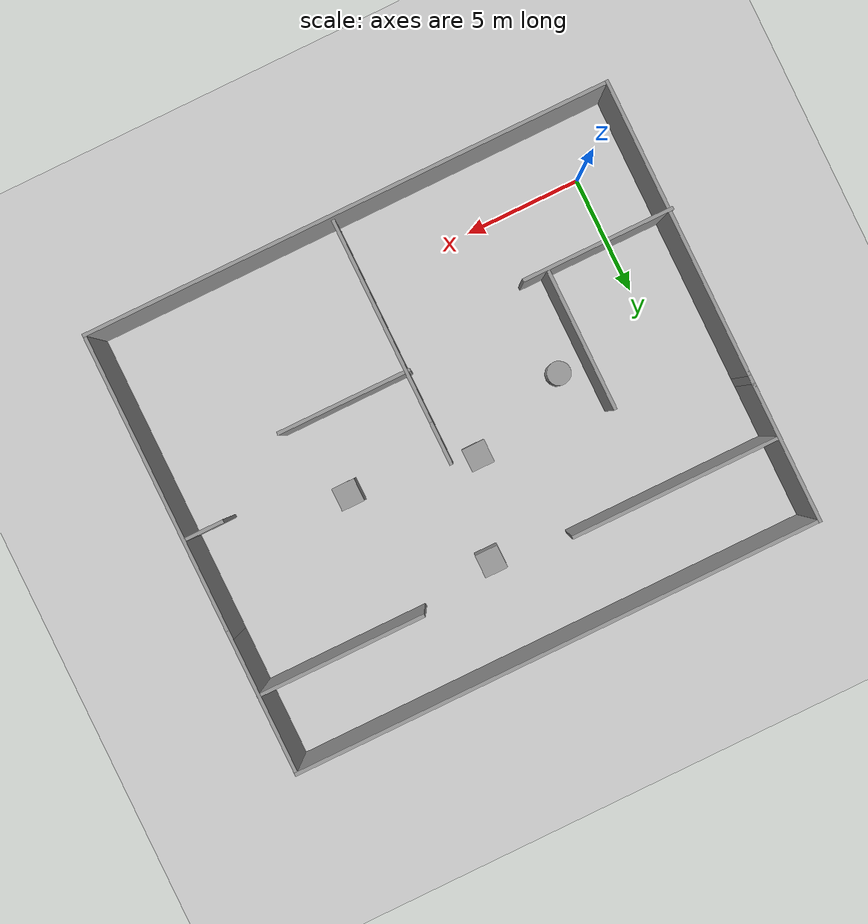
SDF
<sdf version="1.7">
 <world name="default">
  <light name="sun" type="directional">
   <pose>0 0 10 0 -0 0</pose>
   <diffuse>0.8 0.8 0.8 1</diffuse>
   <specular>0.2 0.2 0.2 1</specular>
   <attenuation>
    <range>1000</range>
    <constant>0.9</constant>
    <linear>0.01</linear>
    <quadratic>0.001</quadratic>
   </attenuation>
   <direction>-0.5 0.1 -0.9</direction>
   <spot><inner_angle>0</inner_angle><outer_angle>0</outer_angle><falloff>0</falloff></spot>
  </light>
  <model name="ground_plane">
   <static>1</static>
   <link name="link">
    <collision name="collision">
     <geometry><plane><normal>0 0 1</normal><size>100 100</size></plane></geometry>
     <surface><friction><ode><mu>100</mu><mu2>50</mu2></ode></friction></surface>
    </collision>
    <visual name="visual">
     <cast_shadows>0</cast_shadows>
     <geometry><plane><normal>0 0 1</normal><size>100 100</size></plane></geometry>
     <material>
      <script><uri>file://media/materials/scripts/gazebo.material</uri><name>Gazebo/Grey</name></script>
     </material>
    </visual>
   </link>
  </model>
  <gravity>0 0 -9.8</gravity>
  <magnetic_field>6e-06 2.3e-05 -4.2e-05</magnetic_field>
  <atmosphere type="adiabatic"/>
  <physics type="ode">
   <max_step_size>0.001</max_step_size>
   <real_time_factor>1</real_time_factor>
   <real_time_update_rate>1000</real_time_update_rate>
  </physics>
  <scene><ambient>0.4 0.4 0.4 1</ambient><background>0.7 0.7 0.7 1</background><shadows>1</shadows></scene>
  <spherical_coordinates>
   <surface_model>EARTH_WGS84</surface_model>
   <latitude_deg>0</latitude_deg>
   <longitude_deg>0</longitude_deg>
   <elevation>0</elevation>
   <heading_deg>0</heading_deg>
  </spherical_coordinates>
  <model name="building_room">
   <pose>9.02561 6.91001 0 0 -0 0</pose>
   <link name="Wall_11">
    <collision name="Wall_11_Collision">
     <geometry><box><size>6.5 0.15 2.5</size></box></geometry>
     <pose>0 0 1.25 0 -0 0</pose>
    </collision>
    <visual name="Wall_11_Visual">
     <pose>0 0 1.25 0 -0 0</pose>
     <geometry><box><size>6.5 0.15 2.5</size></box></geometry>
     <material>
      <script><uri>file://media/materials/scripts/gazebo.material</uri><name>Gazebo/Grey</name></script>
      <ambient>1 1 1 1</ambient>
     </material>
     <meta><layer>0</layer></meta>
    </visual>
    <pose>-8.18188 -3.95065 0 0 -0 0</pose>
   </link>
   <link name="Wall_13">
    <collision name="Wall_13_Collision">
     <geometry><box><size>8.75 0.15 2.5</size></box></geometry>
     <pose>0 0 1.25 0 -0 0</pose>
    </collision>
    <visual name="Wall_13_Visual">
     <pose>0 0 1.25 0 -0 0</pose>
     <geometry><box><size>8.75 0.15 2.5</size></box></geometry>
     <material>
      <script><uri>file://media/materials/scripts/gazebo.material</uri><name>Gazebo/Grey</name></script>
      <ambient>1 1 1 1</ambient>
     </material>
     <meta><layer>0</layer></meta>
    </visual>
    <pose>0.693008 -4.92563 0 0 -0 -1.5708</pose>
   </link>
   <link name="Wall_19">
    <collision name="Wall_19_Collision">
     <geometry><box><size>6 0.15 2.5</size></box></geometry>
     <pose>0 0 1.25 0 -0 0</pose>
    </collision>
    <visual name="Wall_19_Visual">
     <pose>0 0 1.25 0 -0 0</pose>
     <geometry><box><size>6 0.15 2.5</size></box></geometry>
     <material>
      <script><uri>file://media/materials/scripts/gazebo.material</uri><name>Gazebo/Grey</name></script>
      <ambient>1 1 1 1</ambient>
     </material>
     <meta><layer>0</layer></meta>
    </visual>
    <pose>-11.2505 6.55 0 0 -0 1.5708</pose>
   </link>
   <link name="Wall_23">
    <collision name="Wall_23_Collision">
     <geometry><box><size>22.75 0.15 2.5</size></box></geometry>
     <pose>0 0 1.25 0 -0 0</pose>
    </collision>
    <visual name="Wall_23_Visual">
     <pose>0 0 1.25 0 -0 0</pose>
     <geometry><box><size>22.75 0.15 2.5</size></box></geometry>
     <material>
      <script><uri>file://media/materials/scripts/gazebo.material</uri><name>Gazebo/Grey</name></script>
      <ambient>1 1 1 1</ambient>
     </material>
     <meta><layer>0</layer></meta>
    </visual>
    <pose>0.049519 9.475 0 0 -0 0</pose>
   </link>
   <link name="Wall_24">
    <collision name="Wall_24_Collision">
     <geometry><box><size>6.25 0.15 2.5</size></box></geometry>
     <pose>0 0 1.25 0 -0 0</pose>
    </collision>
    <visual name="Wall_24_Visual">
     <pose>0 0 1.25 0 -0 0</pose>
     <geometry><box><size>6.25 0.15 2.5</size></box></geometry>
     <material>
      <script><uri>file://media/materials/scripts/gazebo.material</uri><name>Gazebo/Grey</name></script>
      <ambient>1 1 1 1</ambient>
     </material>
     <meta><layer>0</layer></meta>
    </visual>
    <pose>11.3495 6.425 0 0 -0 -1.5708</pose>
   </link>
   <link name="Wall_28">
    <collision name="Wall_28_Collision">
     <geometry><box><size>6 0.15 2.5</size></box></geometry>
     <pose>0 0 1.25 0 -0 0</pose>
    </collision>
    <visual name="Wall_28_Visual">
     <pose>0 0 1.25 0 -0 0</pose>
     <geometry><box><size>6 0.15 2.5</size></box></geometry>
     <material>
      <script><uri>file://media/materials/scripts/gazebo.material</uri><name>Gazebo/Grey</name></script>
      <ambient>1 1 1 1</ambient>
     </material>
     <meta><layer>0</layer></meta>
    </visual>
    <pose>-5.98554 -0.864549 0 0 -0 -1.5708</pose>
   </link>
   <link name="Wall_34">
    <collision name="Wall_34_Collision">
     <geometry><box><size>1.75 0.15 2.5</size></box></geometry>
     <pose>0 0 1.25 0 -0 0</pose>
    </collision>
    <visual name="Wall_34_Visual">
     <pose>0 0 1.25 0 -0 0</pose>
     <geometry><box><size>1.75 0.15 2.5</size></box></geometry>
     <material>
      <script><uri>file://media/materials/scripts/gazebo.material</uri><name>Gazebo/Grey</name></script>
      <ambient>1 1 1 1</ambient>
     </material>
     <meta><layer>0</layer></meta>
    </visual>
    <pose>10.4958 -0.614674 0 0 -0 3.14159</pose>
   </link>
   <link name="Wall_36">
    <collision name="Wall_36_Collision">
     <geometry><box><size>5.75 0.15 2.5</size></box></geometry>
     <pose>0 0 1.25 0 -0 0</pose>
    </collision>
    <visual name="Wall_36_Visual">
     <pose>0 0 1.25 0 -0 0</pose>
     <geometry><box><size>5.75 0.15 2.5</size></box></geometry>
     <material>
      <script><uri>file://media/materials/scripts/gazebo.material</uri><name>Gazebo/Grey</name></script>
      <ambient>1 1 1 1</ambient>
     </material>
     <meta><layer>0</layer></meta>
    </visual>
    <pose>3.39527 -2.75477 0 0 -0 0</pose>
   </link>
   <link name="Wall_40">
    <collision name="Wall_40_Collision">
     <geometry><box><size>9 0.15 2.5</size></box></geometry>
     <pose>0 0 1.25 0 -0 0</pose>
    </collision>
    <visual name="Wall_40_Visual">
     <pose>0 0 1.25 0 -0 0</pose>
     <geometry><box><size>9 0.15 2.5</size></box></geometry>
     <material>
      <script><uri>file://media/materials/scripts/gazebo.material</uri><name>Gazebo/Grey</name></script>
      <ambient>1 1 1 1</ambient>
     </material>
     <meta><layer>0</layer></meta>
    </visual>
    <pose>-6.79943 5.88289 0 0 -0 0</pose>
   </link>
   <link name="Wall_42">
    <collision name="Wall_42_Collision">
     <geometry><box><size>7.25 0.15 2.5</size></box></geometry>
     <pose>0 0 1.25 0 -0 0</pose>
    </collision>
    <visual name="Wall_42_Visual">
     <pose>0 0 1.25 0 -0 0</pose>
     <geometry><box><size>7.25 0.15 2.5</size></box></geometry>
     <material>
      <script><uri>file://media/materials/scripts/gazebo.material</uri><name>Gazebo/Grey</name></script>
      <ambient>1 1 1 1</ambient>
     </material>
     <meta><layer>0</layer></meta>
    </visual>
    <pose>7.80688 6.09569 0 0 -0 0</pose>
   </link>
   <link name="Wall_44">
    <collision name="Wall_44_Collision">
     <geometry><box><size>2.5 0.15 2.5</size></box></geometry>
     <pose>0 0 1.25 0 -0 0</pose>
    </collision>
    <visual name="Wall_44_Visual">
     <pose>0 0 1.25 0 -0 0</pose>
     <geometry><box><size>2.5 0.15 2.5</size></box></geometry>
     <material>
      <script><uri>file://media/materials/scripts/gazebo.material</uri><name>Gazebo/Grey</name></script>
      <ambient>1 1 1 1</ambient>
     </material>
     <meta><layer>0</layer></meta>
    </visual>
    <pose>0.692455 0.03544 0 0 -0 1.5708</pose>
   </link>
   <link name="Wall_5">
    <collision name="Wall_5_Collision">
     <geometry><box><size>12.75 0.15 2.5</size></box></geometry>
     <pose>0 0 1.25 0 -0 0</pose>
    </collision>
    <visual name="Wall_5_Visual">
     <pose>0 0 1.25 0 -0 0</pose>
     <geometry><box><size>12.75 0.15 2.5</size></box></geometry>
     <material>
      <script><uri>file://media/materials/scripts/gazebo.material</uri><name>Gazebo/Grey</name></script>
      <ambient>1 1 1 1</ambient>
     </material>
     <meta><layer>0</layer></meta>
    </visual>
    <pose>-11.2505 -3.175 0 0 -0 -1.5708</pose>
   </link>
   <link name="Wall_6">
    <collision name="Wall_6_Collision">
     <geometry><box><size>22.75 0.15 2.5</size></box></geometry>
     <pose>0 0 1.25 0 -0 0</pose>
    </collision>
    <visual name="Wall_6_Visual">
     <pose>0 0 1.25 0 -0 0</pose>
     <geometry><box><size>22.75 0.15 2.5</size></box></geometry>
     <material>
      <script><uri>file://media/materials/scripts/gazebo.material</uri><name>Gazebo/Grey</name></script>
      <ambient>1 1 1 1</ambient>
     </material>
     <meta><layer>0</layer></meta>
    </visual>
    <pose>0.049519 -9.475 0 0 -0 0</pose>
   </link>
   <link name="Wall_7">
    <collision name="Wall_7_Collision">
     <geometry><box><size>13.25 0.15 2.5</size></box></geometry>
     <pose>0 0 1.25 0 -0 0</pose>
    </collision>
    <visual name="Wall_7_Visual">
     <pose>0 0 1.25 0 -0 0</pose>
     <geometry><box><size>13.25 0.15 2.5</size></box></geometry>
     <material>
      <script><uri>file://media/materials/scripts/gazebo.material</uri><name>Gazebo/Grey</name></script>
      <ambient>1 1 1 1</ambient>
     </material>
     <meta><layer>0</layer></meta>
    </visual>
    <pose>11.3495 -2.925 0 0 -0 1.5708</pose>
   </link>
   <link name="Wall_9">
    <collision name="Wall_9_Collision">
     <geometry><box><size>0.65 0.15 2.5</size></box></geometry>
     <pose>0 0 1.25 0 -0 0</pose>
    </collision>
    <visual name="Wall_9_Visual">
     <pose>0 0 1.25 0 -0 0</pose>
     <geometry><box><size>0.65 0.15 2.5</size></box></geometry>
     <material>
      <script><uri>file://media/materials/scripts/gazebo.material</uri><name>Gazebo/Grey</name></script>
      <ambient>1 1 1 1</ambient>
     </material>
     <meta><layer>0</layer></meta>
    </visual>
    <pose>-11.2505 3.375 0 0 -0 -1.5708</pose>
   </link>
   <static>1</static>
  </model>
  <model name="unit_box">
   <pose>8.6164 8.37965 0.499995 -1e-05 -0 -0</pose>
   <link name="link">
    <inertial>
     <mass>1</mass>
     <inertia>
      <ixx>0.166667</ixx>
      <ixy>0</ixy>
      <ixz>0</ixz>
      <iyy>0.166667</iyy>
      <iyz>0</iyz>
      <izz>0.166667</izz>
     </inertia>
    </inertial>
    <collision name="collision"><geometry><box><size>1 1 1</size></box></geometry></collision>
    <visual name="visual">
     <geometry><box><size>1 1 1</size></box></geometry>
     <material>
      <script><name>Gazebo/Grey</name><uri>file://media/materials/scripts/gazebo.material</uri></script>
     </material>
    </visual>
   </link>
  </model>
  <model name="unit_cylinder">
   <pose>4.23114 6.80789 0.499997 3e-06 4e-06 -0</pose>
   <link name="link">
    <inertial>
     <mass>1</mass>
     <inertia><ixx>0.145833</ixx><ixy>0</ixy><ixz>0</ixz><iyy>0.145833</iyy><iyz>0</iyz><izz>0.125</izz></inertia>
    </inertial>
    <collision name="collision">
     <geometry><cylinder><radius>0.5</radius><length>1</length></cylinder></geometry>
    </collision>
    <visual name="visual">
     <geometry><cylinder><radius>0.5</radius><length>1</length></cylinder></geometry>
     <material>
      <script><name>Gazebo/Grey</name><uri>file://media/materials/scripts/gazebo.material</uri></script>
     </material>
    </visual>
   </link>
  </model>
  <model name="unit_box_0">
   <pose>14.0197 7.51096 0.499995 -1e-05 -0 0</pose>
   <link name="link">
    <inertial>
     <mass>1</mass>
     <inertia>
      <ixx>0.166667</ixx>
      <ixy>0</ixy>
      <ixz>0</ixz>
      <iyy>0.166667</iyy>
      <iyz>0</iyz>
      <izz>0.166667</izz>
     </inertia>
    </inertial>
    <collision name="collision"><geometry><box><size>1 1 1</size></box></geometry></collision>
    <visual name="visual">
     <geometry><box><size>1 1 1</size></box></geometry>
     <material>
      <script><name>Gazebo/Grey</name><uri>file://media/materials/scripts/gazebo.material</uri></script>
     </material>
    </visual>
   </link>
  </model>
  <model name="unit_box_1">
   <pose>9.99441 12.4475 0.5 0 -0 0</pose>
   <link name="link">
    <inertial>
     <mass>1</mass>
     <inertia>
      <ixx>0.166667</ixx>
      <ixy>0</ixy>
      <ixz>0</ixz>
      <iyy>0.166667</iyy>
      <iyz>0</iyz>
      <izz>0.166667</izz>
     </inertia>
    </inertial>
    <collision name="collision"><geometry><box><size>1 1 1</size></box></geometry></collision>
    <visual name="visual">
     <geometry><box><size>1 1 1</size></box></geometry>
     <material>
      <script><name>Gazebo/Grey</name><uri>file://media/materials/scripts/gazebo.material</uri></script>
     </material>
    </visual>
   </link>
  </model>
 </world>
</sdf>
